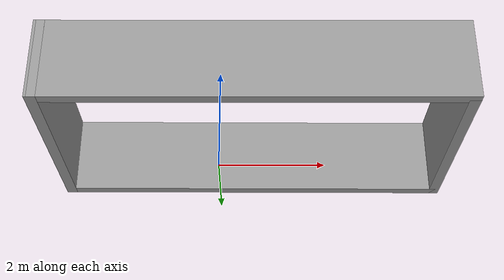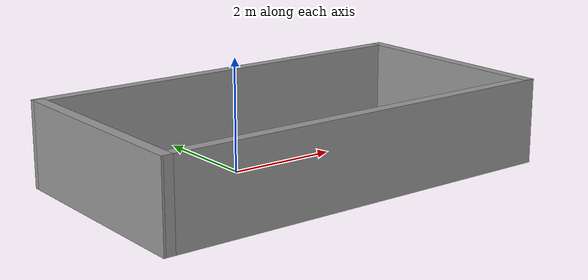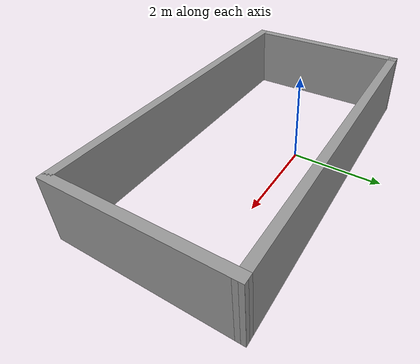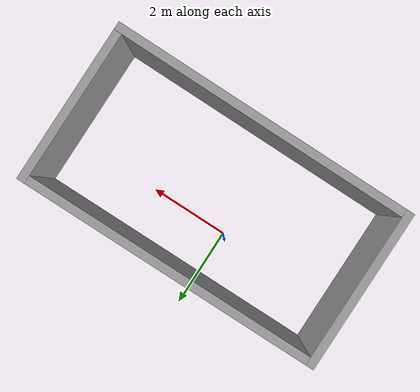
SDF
<?xml version='1.0'?>
<sdf version='1.5'>
    <model name='plumeWorld'>
      <link name='Wall_6'>
        <collision name='Wall_6_Collision'>
          <geometry>
            <box>
              <size>3.95002 0.2 1.5</size>
            </box>
          </geometry>
          <pose>0 0 0.75 0 -0 0</pose>
          <max_contacts>10</max_contacts>
          <surface>
            <contact>
              <ode/>
            </contact>
            <bounce/>
            <friction>
              <ode/>
            </friction>
          </surface>
        </collision>
        <visual name='Wall_6_Visual'>
          <pose>0 0 0.75 0 -0 0</pose>
          <geometry>
            <box>
              <size>3.95002 0.2 1.5</size>
            </box>
          </geometry>
          <material>
            <script>
              <uri>file://media/materials/scripts/gazebo.material</uri>
              <name>Gazebo/Grey</name>
            </script>
          </material>
        </visual>
        <velocity_decay>
          <linear>0</linear>
          <angular>0</angular>
        </velocity_decay>
        <pose>-3.01034 -0.685 0 0 0 -1.57098</pose>
        <self_collide>0</self_collide>
        <kinematic>0</kinematic>
        <gravity>1</gravity>
      </link>
      <link name='Wall_7'>
        <collision name='Wall_7_Collision'>
          <geometry>
            <box>
              <size>7.52055 0.2 1.5</size>
            </box>
          </geometry>
          <pose>0 0 0.75 0 -0 0</pose>
          <max_contacts>10</max_contacts>
          <surface>
            <contact>
              <ode/>
            </contact>
            <bounce/>
            <friction>
              <ode/>
            </friction>
          </surface>
        </collision>
        <visual name='Wall_7_Visual'>
          <pose>0 0 0.75 0 -0 0</pose>
          <geometry>
            <box>
              <size>7.52055 0.2 1.5</size>
            </box>
          </geometry>
          <material>
            <script>
              <uri>file://media/materials/scripts/gazebo.material</uri>
              <name>Gazebo/Grey</name>
            </script>
          </material>
        </visual>
        <velocity_decay>
          <linear>0</linear>
          <angular>0</angular>
        </velocity_decay>
        <pose>0.649659 -2.56 0 0 -0 0</pose>
        <self_collide>0</self_collide>
        <kinematic>0</kinematic>
        <gravity>1</gravity>
      </link>
      <link name='Wall_8'>
        <collision name='Wall_8_Collision'>
          <geometry>
            <box>
              <size>3.99 0.2 1.5</size>
            </box>
          </geometry>
          <pose>0 0 0.75 0 -0 0</pose>
          <max_contacts>10</max_contacts>
          <surface>
            <contact>
              <ode/>
            </contact>
            <bounce/>
            <friction>
              <ode/>
            </friction>
          </surface>
        </collision>
        <visual name='Wall_8_Visual'>
          <pose>0 0 0.75 0 -0 0</pose>
          <geometry>
            <box>
              <size>3.99 0.2 1.5</size>
            </box>
          </geometry>
          <material>
            <script>
              <uri>file://media/materials/scripts/gazebo.material</uri>
              <name>Gazebo/Grey</name>
            </script>
          </material>
        </visual>
        <velocity_decay>
          <linear>0</linear>
          <angular>0</angular>
        </velocity_decay>
        <pose>4.31 -0.665 0 0 -0 1.5708</pose>
        <self_collide>0</self_collide>
        <kinematic>0</kinematic>
        <gravity>1</gravity>
      </link>
      <link name='Wall_9'>
        <collision name='Wall_9_Collision'>
          <geometry>
            <box>
              <size>7.52011 0.2 1.5</size>
            </box>
          </geometry>
          <pose>0 0 0.75 0 -0 0</pose>
          <max_contacts>10</max_contacts>
          <surface>
            <contact>
              <ode/>
            </contact>
            <bounce/>
            <friction>
              <ode/>
            </friction>
          </surface>
        </collision>
        <visual name='Wall_9_Visual'>
          <pose>0 0 0.75 0 -0 0</pose>
          <geometry>
            <box>
              <size>7.52011 0.2 1.5</size>
            </box>
          </geometry>
          <material>
            <script>
              <uri>file://media/materials/scripts/gazebo.material</uri>
              <name>Gazebo/Grey</name>
            </script>
          </material>
        </visual>
        <velocity_decay>
          <linear>0</linear>
          <angular>0</angular>
        </velocity_decay>
        <pose>0.65 1.21 0 0 0 -3.13613</pose>
        <self_collide>0</self_collide>
        <kinematic>0</kinematic>
        <gravity>1</gravity>
      </link>
      <static>1</static>
    </model>
</sdf>
